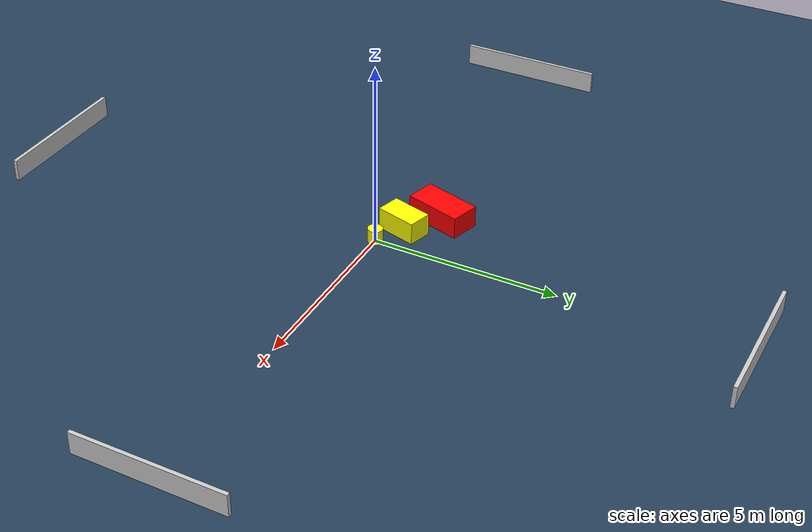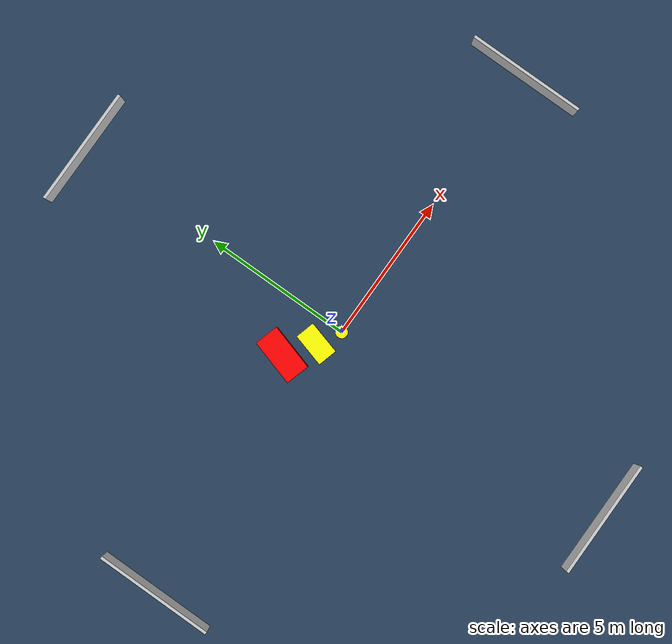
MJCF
<?xml version="1.0" ?>
<mujoco model="generated_environment">
  <option timestep="0.01" integrator="RK4" cone="elliptic"/>
  <default>
    <geom density="1"/>
  </default>
  <asset>
    <texture builtin="gradient" height="3072" name="skybox" rgb1="0.3 0.5 0.7" rgb2="0 0 0" type="skybox" width="512"/>
    <texture builtin="checker" height="300" name="groundplane" rgb1="0.2 0.3 0.4" rgb2="0.1 0.2 0.3" type="2d" width="300"/>
    <material name="groundplane" reflectance="0.2" texrepeat="5 5" texture="groundplane"/>
  </asset>
  <worldbody>
    <light dir="0 0 -1" directional="true" pos="0 0 1.5"/>
    <geom condim="3" friction="0.5 0.005 0.001" material="groundplane" name="floor" pos="0 0 0" size="0 0 0.05" type="plane"/>
    <body name="walls">
      <geom name="wall_1" condim="4" pos="-10.0 0.0 0.3" rgba="0.800000011920929 0.800000011920929 0.800000011920929 1.0" size="0.05 2.0 0.3" type="box"/>
      <geom name="wall_2" condim="4" pos="10.0 0.0 0.3" rgba="0.800000011920929 0.800000011920929 0.800000011920929 1.0" size="0.05 2.0 0.3" type="box"/>
      <geom name="wall_3" condim="4" pos="0.0 -10.0 0.3" rgba="0.800000011920929 0.800000011920929 0.800000011920929 1.0" size="2.0 0.05 0.3" type="box"/>
      <geom name="wall_4" condim="4" pos="0.0 10.0 0.3" rgba="0.800000011920929 0.800000011920929 0.800000011920929 1.0" size="2.0 0.05 0.3" type="box"/>
    </body>
    <body name="robot">
      <joint name="joint_x" type="slide" pos="0 0 0" axis="1 0 0"/>
      <joint name="joint_y" type="slide" pos="0 0 0" axis="0 1 0"/>
      <geom name="robot" type="cylinder" pos="0.0 0.0 0.2" size="0.2 0.2 0.0" mass="5.0" friction="1.0 0.005 0.0001" condim="4" rgba="1.0 1.0 0.0 1.0"/>
    </body>
    <body name="obstacle_1_movable">
      <geom name="obstacle_1_movable" condim="4" pos="-0.7669444189704794 0.42602943780265146 0.3" euler="0 0 344.65067678839324" friction="0.0 0.005 0.001" rgba="1.0 1.0 0.0 1.0" size="0.32858127816368116 0.5620896982707516 0.3" type="box" mass="0.1"/>
      <joint type="free"/>
    </body>
    <body name="obstacle_2_static">
      <geom name="obstacle_2_static" condim="4" pos="-1.6632720712038822 1.0947750263589309 0.3" euler="0 0 343.7206764979732" friction="0.0 0.005 0.001" rgba="1.0 0.0 0.0 1.0" size="0.40484347594897985 0.790496677779271 0.3" type="box"/>
    </body>
  </worldbody>
  <actuator>
    <motor name="actuator_x" joint="joint_x" gear="1" ctrlrange="-1 1"/>
    <motor name="actuator_y" joint="joint_y" gear="1" ctrlrange="-1 1"/>
  </actuator>
</mujoco>
